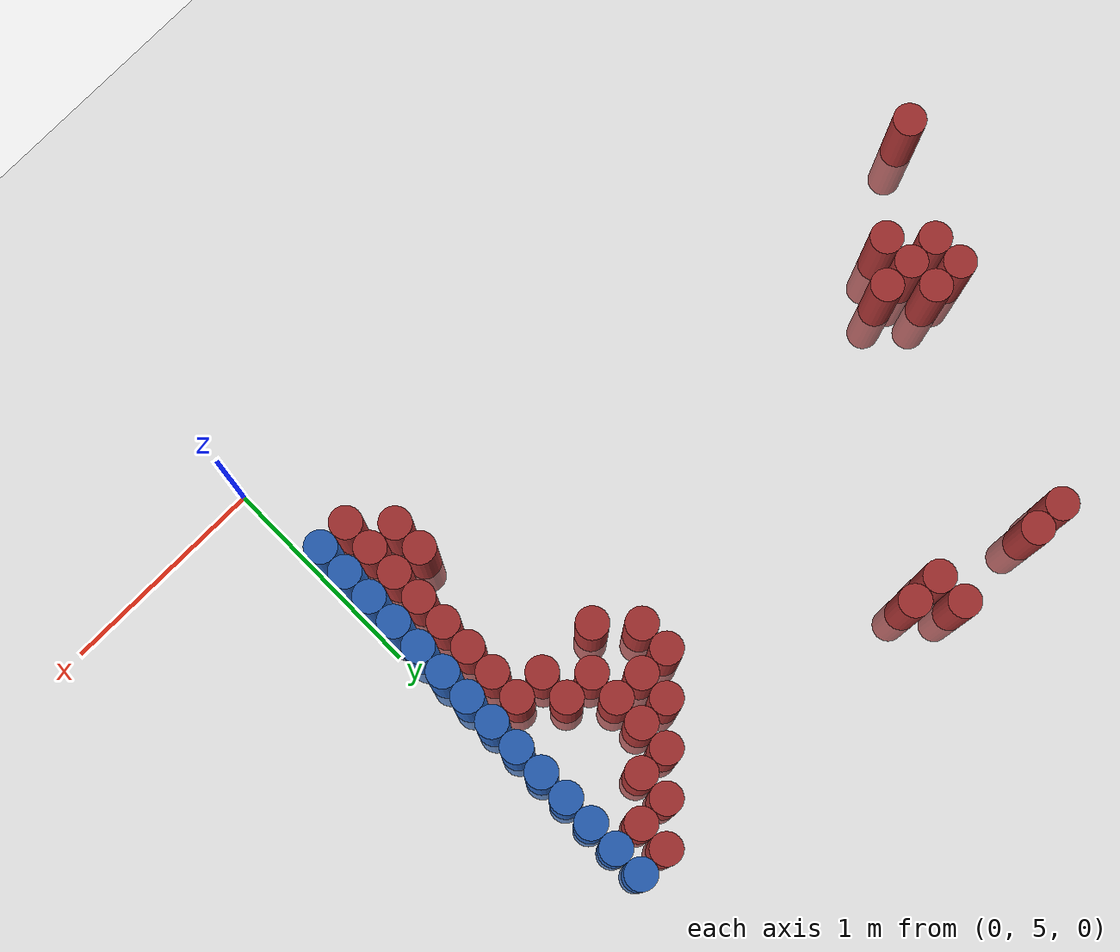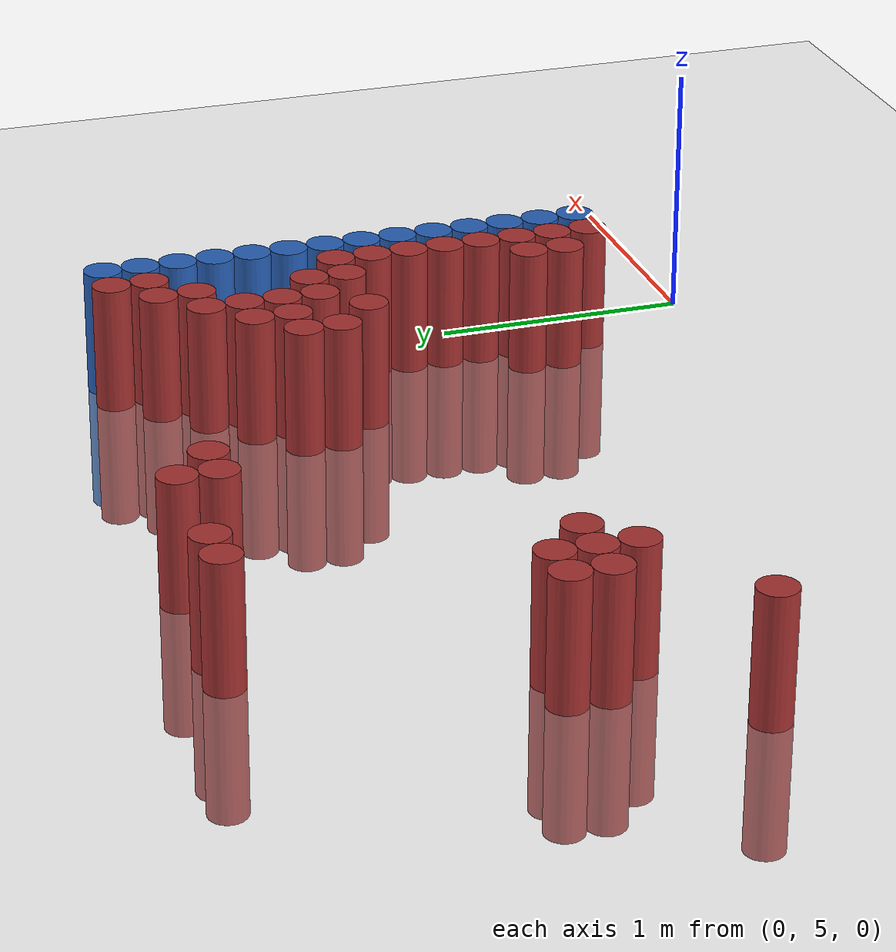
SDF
<sdf version="1.6">
 <world name="default">
  <model name="ground_plane">
   <static>1</static>
   <link name="link">
    <collision name="collision">
     <geometry><plane><normal>0 0 1</normal><size>100 100</size></plane></geometry>
     <surface><friction><ode><mu>100</mu><mu2>50</mu2></ode></friction></surface>
    </collision>
    <visual name="visual">
     <cast_shadows>0</cast_shadows>
     <geometry><plane><normal>0 0 1</normal><size>100 100</size></plane></geometry>
     <material>
      <script><uri>file://media/materials/scripts/gazebo.material</uri><name>Gazebo/Grey</name></script>
     </material>
    </visual>
   </link>
  </model>
  <model name="unit_cylinder_154">
   <static>1</static>
   <pose>-3.225000 5.925000 0.000000 0.000000 0.000000 0.000000</pose>
   <link name="link">
    <inertial>
     <mass>1</mass>
     <inertia><ixx>0.145833</ixx><ixy>0</ixy><ixz>0</ixz><iyy>0.145833</iyy><iyz>0</iyz><izz>0.125</izz></inertia>
    </inertial>
    <collision name="collision">
     <geometry><cylinder><radius>0.075000</radius><length>1</length></cylinder></geometry>
    </collision>
    <visual name="visual">
     <geometry><cylinder><radius>0.075000</radius><length>1</length></cylinder></geometry>
     <material>
      <ambient>0.648000 0.192000 0.192000 1</ambient>
      <diffuse>0.648000 0.192000 0.192000 1</diffuse>
     </material>
     <material>
      <script><name>Gazebo/Grey</name><uri>file://media/materials/scripts/gazebo.material</uri></script>
     </material>
    </visual>
   </link>
  </model>
  <model name="unit_cylinder_159">
   <static>1</static>
   <pose>-2.925000 6.375000 0.000000 0.000000 0.000000 0.000000</pose>
   <link name="link">
    <inertial>
     <mass>1</mass>
     <inertia><ixx>0.145833</ixx><ixy>0</ixy><ixz>0</ixz><iyy>0.145833</iyy><iyz>0</iyz><izz>0.125</izz></inertia>
    </inertial>
    <collision name="collision">
     <geometry><cylinder><radius>0.075000</radius><length>1</length></cylinder></geometry>
    </collision>
    <visual name="visual">
     <geometry><cylinder><radius>0.075000</radius><length>1</length></cylinder></geometry>
     <material>
      <ambient>0.648000 0.192000 0.192000 1</ambient>
      <diffuse>0.648000 0.192000 0.192000 1</diffuse>
     </material>
     <material>
      <script><name>Gazebo/Grey</name><uri>file://media/materials/scripts/gazebo.material</uri></script>
     </material>
    </visual>
   </link>
  </model>
  <model name="unit_cylinder_160">
   <static>1</static>
   <pose>-2.925000 6.525000 0.000000 0.000000 0.000000 0.000000</pose>
   <link name="link">
    <inertial>
     <mass>1</mass>
     <inertia><ixx>0.145833</ixx><ixy>0</ixy><ixz>0</ixz><iyy>0.145833</iyy><iyz>0</iyz><izz>0.125</izz></inertia>
    </inertial>
    <collision name="collision">
     <geometry><cylinder><radius>0.075000</radius><length>1</length></cylinder></geometry>
    </collision>
    <visual name="visual">
     <geometry><cylinder><radius>0.075000</radius><length>1</length></cylinder></geometry>
     <material>
      <ambient>0.648000 0.192000 0.192000 1</ambient>
      <diffuse>0.648000 0.192000 0.192000 1</diffuse>
     </material>
     <material>
      <script><name>Gazebo/Grey</name><uri>file://media/materials/scripts/gazebo.material</uri></script>
     </material>
    </visual>
   </link>
  </model>
  <model name="unit_cylinder_163">
   <static>1</static>
   <pose>-2.775000 6.225000 0.000000 0.000000 0.000000 0.000000</pose>
   <link name="link">
    <inertial>
     <mass>1</mass>
     <inertia><ixx>0.145833</ixx><ixy>0</ixy><ixz>0</ixz><iyy>0.145833</iyy><iyz>0</iyz><izz>0.125</izz></inertia>
    </inertial>
    <collision name="collision">
     <geometry><cylinder><radius>0.075000</radius><length>1</length></cylinder></geometry>
    </collision>
    <visual name="visual">
     <geometry><cylinder><radius>0.075000</radius><length>1</length></cylinder></geometry>
     <material>
      <ambient>0.648000 0.192000 0.192000 1</ambient>
      <diffuse>0.648000 0.192000 0.192000 1</diffuse>
     </material>
     <material>
      <script><name>Gazebo/Grey</name><uri>file://media/materials/scripts/gazebo.material</uri></script>
     </material>
    </visual>
   </link>
  </model>
  <model name="unit_cylinder_164">
   <static>1</static>
   <pose>-2.775000 6.375000 0.000000 0.000000 0.000000 0.000000</pose>
   <link name="link">
    <inertial>
     <mass>1</mass>
     <inertia><ixx>0.145833</ixx><ixy>0</ixy><ixz>0</ixz><iyy>0.145833</iyy><iyz>0</iyz><izz>0.125</izz></inertia>
    </inertial>
    <collision name="collision">
     <geometry><cylinder><radius>0.075000</radius><length>1</length></cylinder></geometry>
    </collision>
    <visual name="visual">
     <geometry><cylinder><radius>0.075000</radius><length>1</length></cylinder></geometry>
     <material>
      <ambient>0.648000 0.192000 0.192000 1</ambient>
      <diffuse>0.648000 0.192000 0.192000 1</diffuse>
     </material>
     <material>
      <script><name>Gazebo/Grey</name><uri>file://media/materials/scripts/gazebo.material</uri></script>
     </material>
    </visual>
   </link>
  </model>
  <model name="unit_cylinder_165">
   <static>1</static>
   <pose>-2.775000 6.525000 0.000000 0.000000 0.000000 0.000000</pose>
   <link name="link">
    <inertial>
     <mass>1</mass>
     <inertia><ixx>0.145833</ixx><ixy>0</ixy><ixz>0</ixz><iyy>0.145833</iyy><iyz>0</iyz><izz>0.125</izz></inertia>
    </inertial>
    <collision name="collision">
     <geometry><cylinder><radius>0.075000</radius><length>1</length></cylinder></geometry>
    </collision>
    <visual name="visual">
     <geometry><cylinder><radius>0.075000</radius><length>1</length></cylinder></geometry>
     <material>
      <ambient>0.648000 0.192000 0.192000 1</ambient>
      <diffuse>0.648000 0.192000 0.192000 1</diffuse>
     </material>
     <material>
      <script><name>Gazebo/Grey</name><uri>file://media/materials/scripts/gazebo.material</uri></script>
     </material>
    </visual>
   </link>
  </model>
  <model name="unit_cylinder_168">
   <static>1</static>
   <pose>-2.625000 6.375000 0.000000 0.000000 0.000000 0.000000</pose>
   <link name="link">
    <inertial>
     <mass>1</mass>
     <inertia><ixx>0.145833</ixx><ixy>0</ixy><ixz>0</ixz><iyy>0.145833</iyy><iyz>0</iyz><izz>0.125</izz></inertia>
    </inertial>
    <collision name="collision">
     <geometry><cylinder><radius>0.075000</radius><length>1</length></cylinder></geometry>
    </collision>
    <visual name="visual">
     <geometry><cylinder><radius>0.075000</radius><length>1</length></cylinder></geometry>
     <material>
      <ambient>0.648000 0.192000 0.192000 1</ambient>
      <diffuse>0.648000 0.192000 0.192000 1</diffuse>
     </material>
     <material>
      <script><name>Gazebo/Grey</name><uri>file://media/materials/scripts/gazebo.material</uri></script>
     </material>
    </visual>
   </link>
  </model>
  <model name="unit_cylinder_170">
   <static>1</static>
   <pose>-2.475000 7.575000 0.000000 0.000000 0.000000 0.000000</pose>
   <link name="link">
    <inertial>
     <mass>1</mass>
     <inertia><ixx>0.145833</ixx><ixy>0</ixy><ixz>0</ixz><iyy>0.145833</iyy><iyz>0</iyz><izz>0.125</izz></inertia>
    </inertial>
    <collision name="collision">
     <geometry><cylinder><radius>0.075000</radius><length>1</length></cylinder></geometry>
    </collision>
    <visual name="visual">
     <geometry><cylinder><radius>0.075000</radius><length>1</length></cylinder></geometry>
     <material>
      <ambient>0.648000 0.192000 0.192000 1</ambient>
      <diffuse>0.648000 0.192000 0.192000 1</diffuse>
     </material>
     <material>
      <script><name>Gazebo/Grey</name><uri>file://media/materials/scripts/gazebo.material</uri></script>
     </material>
    </visual>
   </link>
  </model>
  <model name="unit_cylinder_172">
   <static>1</static>
   <pose>-2.325000 7.575000 0.000000 0.000000 0.000000 0.000000</pose>
   <link name="link">
    <inertial>
     <mass>1</mass>
     <inertia><ixx>0.145833</ixx><ixy>0</ixy><ixz>0</ixz><iyy>0.145833</iyy><iyz>0</iyz><izz>0.125</izz></inertia>
    </inertial>
    <collision name="collision">
     <geometry><cylinder><radius>0.075000</radius><length>1</length></cylinder></geometry>
    </collision>
    <visual name="visual">
     <geometry><cylinder><radius>0.075000</radius><length>1</length></cylinder></geometry>
     <material>
      <ambient>0.648000 0.192000 0.192000 1</ambient>
      <diffuse>0.648000 0.192000 0.192000 1</diffuse>
     </material>
     <material>
      <script><name>Gazebo/Grey</name><uri>file://media/materials/scripts/gazebo.material</uri></script>
     </material>
    </visual>
   </link>
  </model>
  <model name="unit_cylinder_177">
   <static>1</static>
   <pose>-1.875000 7.425000 0.000000 0.000000 0.000000 0.000000</pose>
   <link name="link">
    <inertial>
     <mass>1</mass>
     <inertia><ixx>0.145833</ixx><ixy>0</ixy><ixz>0</ixz><iyy>0.145833</iyy><iyz>0</iyz><izz>0.125</izz></inertia>
    </inertial>
    <collision name="collision">
     <geometry><cylinder><radius>0.075000</radius><length>1</length></cylinder></geometry>
    </collision>
    <visual name="visual">
     <geometry><cylinder><radius>0.075000</radius><length>1</length></cylinder></geometry>
     <material>
      <ambient>0.648000 0.192000 0.192000 1</ambient>
      <diffuse>0.648000 0.192000 0.192000 1</diffuse>
     </material>
     <material>
      <script><name>Gazebo/Grey</name><uri>file://media/materials/scripts/gazebo.material</uri></script>
     </material>
    </visual>
   </link>
  </model>
  <model name="unit_cylinder_178">
   <static>1</static>
   <pose>-1.875000 7.575000 0.000000 0.000000 0.000000 0.000000</pose>
   <link name="link">
    <inertial>
     <mass>1</mass>
     <inertia><ixx>0.145833</ixx><ixy>0</ixy><ixz>0</ixz><iyy>0.145833</iyy><iyz>0</iyz><izz>0.125</izz></inertia>
    </inertial>
    <collision name="collision">
     <geometry><cylinder><radius>0.075000</radius><length>1</length></cylinder></geometry>
    </collision>
    <visual name="visual">
     <geometry><cylinder><radius>0.075000</radius><length>1</length></cylinder></geometry>
     <material>
      <ambient>0.648000 0.192000 0.192000 1</ambient>
      <diffuse>0.648000 0.192000 0.192000 1</diffuse>
     </material>
     <material>
      <script><name>Gazebo/Grey</name><uri>file://media/materials/scripts/gazebo.material</uri></script>
     </material>
    </visual>
   </link>
  </model>
  <model name="unit_cylinder_179">
   <static>1</static>
   <pose>-1.725000 7.425000 0.000000 0.000000 0.000000 0.000000</pose>
   <link name="link">
    <inertial>
     <mass>1</mass>
     <inertia><ixx>0.145833</ixx><ixy>0</ixy><ixz>0</ixz><iyy>0.145833</iyy><iyz>0</iyz><izz>0.125</izz></inertia>
    </inertial>
    <collision name="collision">
     <geometry><cylinder><radius>0.075000</radius><length>1</length></cylinder></geometry>
    </collision>
    <visual name="visual">
     <geometry><cylinder><radius>0.075000</radius><length>1</length></cylinder></geometry>
     <material>
      <ambient>0.648000 0.192000 0.192000 1</ambient>
      <diffuse>0.648000 0.192000 0.192000 1</diffuse>
     </material>
     <material>
      <script><name>Gazebo/Grey</name><uri>file://media/materials/scripts/gazebo.material</uri></script>
     </material>
    </visual>
   </link>
  </model>
  <model name="unit_cylinder_192">
   <static>1</static>
   <pose>-0.825000 6.675000 0.000000 0.000000 0.000000 0.000000</pose>
   <link name="link">
    <inertial>
     <mass>1</mass>
     <inertia><ixx>0.145833</ixx><ixy>0</ixy><ixz>0</ixz><iyy>0.145833</iyy><iyz>0</iyz><izz>0.125</izz></inertia>
    </inertial>
    <collision name="collision">
     <geometry><cylinder><radius>0.075000</radius><length>1</length></cylinder></geometry>
    </collision>
    <visual name="visual">
     <geometry><cylinder><radius>0.075000</radius><length>1</length></cylinder></geometry>
     <material>
      <ambient>0.648000 0.192000 0.192000 1</ambient>
      <diffuse>0.648000 0.192000 0.192000 1</diffuse>
     </material>
     <material>
      <script><name>Gazebo/Grey</name><uri>file://media/materials/scripts/gazebo.material</uri></script>
     </material>
    </visual>
   </link>
  </model>
  <model name="unit_cylinder_193">
   <static>1</static>
   <pose>-0.825000 6.825000 0.000000 0.000000 0.000000 0.000000</pose>
   <link name="link">
    <inertial>
     <mass>1</mass>
     <inertia><ixx>0.145833</ixx><ixy>0</ixy><ixz>0</ixz><iyy>0.145833</iyy><iyz>0</iyz><izz>0.125</izz></inertia>
    </inertial>
    <collision name="collision">
     <geometry><cylinder><radius>0.075000</radius><length>1</length></cylinder></geometry>
    </collision>
    <visual name="visual">
     <geometry><cylinder><radius>0.075000</radius><length>1</length></cylinder></geometry>
     <material>
      <ambient>0.648000 0.192000 0.192000 1</ambient>
      <diffuse>0.648000 0.192000 0.192000 1</diffuse>
     </material>
     <material>
      <script><name>Gazebo/Grey</name><uri>file://media/materials/scripts/gazebo.material</uri></script>
     </material>
    </visual>
   </link>
  </model>
  <model name="unit_cylinder_194">
   <static>1</static>
   <pose>-0.675000 6.525000 0.000000 0.000000 0.000000 0.000000</pose>
   <link name="link">
    <inertial>
     <mass>1</mass>
     <inertia><ixx>0.145833</ixx><ixy>0</ixy><ixz>0</ixz><iyy>0.145833</iyy><iyz>0</iyz><izz>0.125</izz></inertia>
    </inertial>
    <collision name="collision">
     <geometry><cylinder><radius>0.075000</radius><length>1</length></cylinder></geometry>
    </collision>
    <visual name="visual">
     <geometry><cylinder><radius>0.075000</radius><length>1</length></cylinder></geometry>
     <material>
      <ambient>0.648000 0.192000 0.192000 1</ambient>
      <diffuse>0.648000 0.192000 0.192000 1</diffuse>
     </material>
     <material>
      <script><name>Gazebo/Grey</name><uri>file://media/materials/scripts/gazebo.material</uri></script>
     </material>
    </visual>
   </link>
  </model>
  <model name="unit_cylinder_195">
   <static>1</static>
   <pose>-0.675000 6.825000 0.000000 0.000000 0.000000 0.000000</pose>
   <link name="link">
    <inertial>
     <mass>1</mass>
     <inertia><ixx>0.145833</ixx><ixy>0</ixy><ixz>0</ixz><iyy>0.145833</iyy><iyz>0</iyz><izz>0.125</izz></inertia>
    </inertial>
    <collision name="collision">
     <geometry><cylinder><radius>0.075000</radius><length>1</length></cylinder></geometry>
    </collision>
    <visual name="visual">
     <geometry><cylinder><radius>0.075000</radius><length>1</length></cylinder></geometry>
     <material>
      <ambient>0.648000 0.192000 0.192000 1</ambient>
      <diffuse>0.648000 0.192000 0.192000 1</diffuse>
     </material>
     <material>
      <script><name>Gazebo/Grey</name><uri>file://media/materials/scripts/gazebo.material</uri></script>
     </material>
    </visual>
   </link>
  </model>
  <model name="unit_cylinder_196">
   <static>1</static>
   <pose>-0.675000 6.975000 0.000000 0.000000 0.000000 0.000000</pose>
   <link name="link">
    <inertial>
     <mass>1</mass>
     <inertia><ixx>0.145833</ixx><ixy>0</ixy><ixz>0</ixz><iyy>0.145833</iyy><iyz>0</iyz><izz>0.125</izz></inertia>
    </inertial>
    <collision name="collision">
     <geometry><cylinder><radius>0.075000</radius><length>1</length></cylinder></geometry>
    </collision>
    <visual name="visual">
     <geometry><cylinder><radius>0.075000</radius><length>1</length></cylinder></geometry>
     <material>
      <ambient>0.648000 0.192000 0.192000 1</ambient>
      <diffuse>0.648000 0.192000 0.192000 1</diffuse>
     </material>
     <material>
      <script><name>Gazebo/Grey</name><uri>file://media/materials/scripts/gazebo.material</uri></script>
     </material>
    </visual>
   </link>
  </model>
  <model name="unit_cylinder_197">
   <static>1</static>
   <pose>-0.525000 6.675000 0.000000 0.000000 0.000000 0.000000</pose>
   <link name="link">
    <inertial>
     <mass>1</mass>
     <inertia><ixx>0.145833</ixx><ixy>0</ixy><ixz>0</ixz><iyy>0.145833</iyy><iyz>0</iyz><izz>0.125</izz></inertia>
    </inertial>
    <collision name="collision">
     <geometry><cylinder><radius>0.075000</radius><length>1</length></cylinder></geometry>
    </collision>
    <visual name="visual">
     <geometry><cylinder><radius>0.075000</radius><length>1</length></cylinder></geometry>
     <material>
      <ambient>0.648000 0.192000 0.192000 1</ambient>
      <diffuse>0.648000 0.192000 0.192000 1</diffuse>
     </material>
     <material>
      <script><name>Gazebo/Grey</name><uri>file://media/materials/scripts/gazebo.material</uri></script>
     </material>
    </visual>
   </link>
  </model>
  <model name="unit_cylinder_198">
   <static>1</static>
   <pose>-0.525000 6.825000 0.000000 0.000000 0.000000 0.000000</pose>
   <link name="link">
    <inertial>
     <mass>1</mass>
     <inertia><ixx>0.145833</ixx><ixy>0</ixy><ixz>0</ixz><iyy>0.145833</iyy><iyz>0</iyz><izz>0.125</izz></inertia>
    </inertial>
    <collision name="collision">
     <geometry><cylinder><radius>0.075000</radius><length>1</length></cylinder></geometry>
    </collision>
    <visual name="visual">
     <geometry><cylinder><radius>0.075000</radius><length>1</length></cylinder></geometry>
     <material>
      <ambient>0.648000 0.192000 0.192000 1</ambient>
      <diffuse>0.648000 0.192000 0.192000 1</diffuse>
     </material>
     <material>
      <script><name>Gazebo/Grey</name><uri>file://media/materials/scripts/gazebo.material</uri></script>
     </material>
    </visual>
   </link>
  </model>
  <model name="unit_cylinder_199">
   <static>1</static>
   <pose>-0.525000 6.975000 0.000000 0.000000 0.000000 0.000000</pose>
   <link name="link">
    <inertial>
     <mass>1</mass>
     <inertia><ixx>0.145833</ixx><ixy>0</ixy><ixz>0</ixz><iyy>0.145833</iyy><iyz>0</iyz><izz>0.125</izz></inertia>
    </inertial>
    <collision name="collision">
     <geometry><cylinder><radius>0.075000</radius><length>1</length></cylinder></geometry>
    </collision>
    <visual name="visual">
     <geometry><cylinder><radius>0.075000</radius><length>1</length></cylinder></geometry>
     <material>
      <ambient>0.648000 0.192000 0.192000 1</ambient>
      <diffuse>0.648000 0.192000 0.192000 1</diffuse>
     </material>
     <material>
      <script><name>Gazebo/Grey</name><uri>file://media/materials/scripts/gazebo.material</uri></script>
     </material>
    </visual>
   </link>
  </model>
  <model name="unit_cylinder_200">
   <static>1</static>
   <pose>-0.525000 7.125000 0.000000 0.000000 0.000000 0.000000</pose>
   <link name="link">
    <inertial>
     <mass>1</mass>
     <inertia><ixx>0.145833</ixx><ixy>0</ixy><ixz>0</ixz><iyy>0.145833</iyy><iyz>0</iyz><izz>0.125</izz></inertia>
    </inertial>
    <collision name="collision">
     <geometry><cylinder><radius>0.075000</radius><length>1</length></cylinder></geometry>
    </collision>
    <visual name="visual">
     <geometry><cylinder><radius>0.075000</radius><length>1</length></cylinder></geometry>
     <material>
      <ambient>0.648000 0.192000 0.192000 1</ambient>
      <diffuse>0.648000 0.192000 0.192000 1</diffuse>
     </material>
     <material>
      <script><name>Gazebo/Grey</name><uri>file://media/materials/scripts/gazebo.material</uri></script>
     </material>
    </visual>
   </link>
  </model>
  <model name="unit_cylinder_201">
   <static>1</static>
   <pose>-0.375000 5.625000 0.000000 0.000000 0.000000 0.000000</pose>
   <link name="link">
    <inertial>
     <mass>1</mass>
     <inertia><ixx>0.145833</ixx><ixy>0</ixy><ixz>0</ixz><iyy>0.145833</iyy><iyz>0</iyz><izz>0.125</izz></inertia>
    </inertial>
    <collision name="collision">
     <geometry><cylinder><radius>0.075000</radius><length>1</length></cylinder></geometry>
    </collision>
    <visual name="visual">
     <geometry><cylinder><radius>0.075000</radius><length>1</length></cylinder></geometry>
     <material>
      <ambient>0.648000 0.192000 0.192000 1</ambient>
      <diffuse>0.648000 0.192000 0.192000 1</diffuse>
     </material>
     <material>
      <script><name>Gazebo/Grey</name><uri>file://media/materials/scripts/gazebo.material</uri></script>
     </material>
    </visual>
   </link>
  </model>
  <model name="unit_cylinder_202">
   <static>1</static>
   <pose>-0.375000 5.775000 0.000000 0.000000 0.000000 0.000000</pose>
   <link name="link">
    <inertial>
     <mass>1</mass>
     <inertia><ixx>0.145833</ixx><ixy>0</ixy><ixz>0</ixz><iyy>0.145833</iyy><iyz>0</iyz><izz>0.125</izz></inertia>
    </inertial>
    <collision name="collision">
     <geometry><cylinder><radius>0.075000</radius><length>1</length></cylinder></geometry>
    </collision>
    <visual name="visual">
     <geometry><cylinder><radius>0.075000</radius><length>1</length></cylinder></geometry>
     <material>
      <ambient>0.648000 0.192000 0.192000 1</ambient>
      <diffuse>0.648000 0.192000 0.192000 1</diffuse>
     </material>
     <material>
      <script><name>Gazebo/Grey</name><uri>file://media/materials/scripts/gazebo.material</uri></script>
     </material>
    </visual>
   </link>
  </model>
  <model name="unit_cylinder_203">
   <static>1</static>
   <pose>-0.375000 6.525000 0.000000 0.000000 0.000000 0.000000</pose>
   <link name="link">
    <inertial>
     <mass>1</mass>
     <inertia><ixx>0.145833</ixx><ixy>0</ixy><ixz>0</ixz><iyy>0.145833</iyy><iyz>0</iyz><izz>0.125</izz></inertia>
    </inertial>
    <collision name="collision">
     <geometry><cylinder><radius>0.075000</radius><length>1</length></cylinder></geometry>
    </collision>
    <visual name="visual">
     <geometry><cylinder><radius>0.075000</radius><length>1</length></cylinder></geometry>
     <material>
      <ambient>0.648000 0.192000 0.192000 1</ambient>
      <diffuse>0.648000 0.192000 0.192000 1</diffuse>
     </material>
     <material>
      <script><name>Gazebo/Grey</name><uri>file://media/materials/scripts/gazebo.material</uri></script>
     </material>
    </visual>
   </link>
  </model>
  <model name="unit_cylinder_204">
   <static>1</static>
   <pose>-0.375000 6.675000 0.000000 0.000000 0.000000 0.000000</pose>
   <link name="link">
    <inertial>
     <mass>1</mass>
     <inertia><ixx>0.145833</ixx><ixy>0</ixy><ixz>0</ixz><iyy>0.145833</iyy><iyz>0</iyz><izz>0.125</izz></inertia>
    </inertial>
    <collision name="collision">
     <geometry><cylinder><radius>0.075000</radius><length>1</length></cylinder></geometry>
    </collision>
    <visual name="visual">
     <geometry><cylinder><radius>0.075000</radius><length>1</length></cylinder></geometry>
     <material>
      <ambient>0.648000 0.192000 0.192000 1</ambient>
      <diffuse>0.648000 0.192000 0.192000 1</diffuse>
     </material>
     <material>
      <script><name>Gazebo/Grey</name><uri>file://media/materials/scripts/gazebo.material</uri></script>
     </material>
    </visual>
   </link>
  </model>
  <model name="unit_cylinder_205">
   <static>1</static>
   <pose>-0.375000 7.125000 0.000000 0.000000 0.000000 0.000000</pose>
   <link name="link">
    <inertial>
     <mass>1</mass>
     <inertia><ixx>0.145833</ixx><ixy>0</ixy><ixz>0</ixz><iyy>0.145833</iyy><iyz>0</iyz><izz>0.125</izz></inertia>
    </inertial>
    <collision name="collision">
     <geometry><cylinder><radius>0.075000</radius><length>1</length></cylinder></geometry>
    </collision>
    <visual name="visual">
     <geometry><cylinder><radius>0.075000</radius><length>1</length></cylinder></geometry>
     <material>
      <ambient>0.648000 0.192000 0.192000 1</ambient>
      <diffuse>0.648000 0.192000 0.192000 1</diffuse>
     </material>
     <material>
      <script><name>Gazebo/Grey</name><uri>file://media/materials/scripts/gazebo.material</uri></script>
     </material>
    </visual>
   </link>
  </model>
  <model name="unit_cylinder_206">
   <static>1</static>
   <pose>-0.375000 7.275000 0.000000 0.000000 0.000000 0.000000</pose>
   <link name="link">
    <inertial>
     <mass>1</mass>
     <inertia><ixx>0.145833</ixx><ixy>0</ixy><ixz>0</ixz><iyy>0.145833</iyy><iyz>0</iyz><izz>0.125</izz></inertia>
    </inertial>
    <collision name="collision">
     <geometry><cylinder><radius>0.075000</radius><length>1</length></cylinder></geometry>
    </collision>
    <visual name="visual">
     <geometry><cylinder><radius>0.075000</radius><length>1</length></cylinder></geometry>
     <material>
      <ambient>0.648000 0.192000 0.192000 1</ambient>
      <diffuse>0.648000 0.192000 0.192000 1</diffuse>
     </material>
     <material>
      <script><name>Gazebo/Grey</name><uri>file://media/materials/scripts/gazebo.material</uri></script>
     </material>
    </visual>
   </link>
  </model>
  <model name="unit_cylinder_210">
   <static>1</static>
   <pose>-0.225000 5.475000 0.000000 0.000000 0.000000 0.000000</pose>
   <link name="link">
    <inertial>
     <mass>1</mass>
     <inertia><ixx>0.145833</ixx><ixy>0</ixy><ixz>0</ixz><iyy>0.145833</iyy><iyz>0</iyz><izz>0.125</izz></inertia>
    </inertial>
    <collision name="collision">
     <geometry><cylinder><radius>0.075000</radius><length>1</length></cylinder></geometry>
    </collision>
    <visual name="visual">
     <geometry><cylinder><radius>0.075000</radius><length>1</length></cylinder></geometry>
     <material>
      <ambient>0.648000 0.192000 0.192000 1</ambient>
      <diffuse>0.648000 0.192000 0.192000 1</diffuse>
     </material>
     <material>
      <script><name>Gazebo/Grey</name><uri>file://media/materials/scripts/gazebo.material</uri></script>
     </material>
    </visual>
   </link>
  </model>
  <model name="unit_cylinder_211">
   <static>1</static>
   <pose>-0.225000 5.625000 0.000000 0.000000 0.000000 0.000000</pose>
   <link name="link">
    <inertial>
     <mass>1</mass>
     <inertia><ixx>0.145833</ixx><ixy>0</ixy><ixz>0</ixz><iyy>0.145833</iyy><iyz>0</iyz><izz>0.125</izz></inertia>
    </inertial>
    <collision name="collision">
     <geometry><cylinder><radius>0.075000</radius><length>1</length></cylinder></geometry>
    </collision>
    <visual name="visual">
     <geometry><cylinder><radius>0.075000</radius><length>1</length></cylinder></geometry>
     <material>
      <ambient>0.648000 0.192000 0.192000 1</ambient>
      <diffuse>0.648000 0.192000 0.192000 1</diffuse>
     </material>
     <material>
      <script><name>Gazebo/Grey</name><uri>file://media/materials/scripts/gazebo.material</uri></script>
     </material>
    </visual>
   </link>
  </model>
  <model name="unit_cylinder_212">
   <static>1</static>
   <pose>-0.225000 5.775000 0.000000 0.000000 0.000000 0.000000</pose>
   <link name="link">
    <inertial>
     <mass>1</mass>
     <inertia><ixx>0.145833</ixx><ixy>0</ixy><ixz>0</ixz><iyy>0.145833</iyy><iyz>0</iyz><izz>0.125</izz></inertia>
    </inertial>
    <collision name="collision">
     <geometry><cylinder><radius>0.075000</radius><length>1</length></cylinder></geometry>
    </collision>
    <visual name="visual">
     <geometry><cylinder><radius>0.075000</radius><length>1</length></cylinder></geometry>
     <material>
      <ambient>0.648000 0.192000 0.192000 1</ambient>
      <diffuse>0.648000 0.192000 0.192000 1</diffuse>
     </material>
     <material>
      <script><name>Gazebo/Grey</name><uri>file://media/materials/scripts/gazebo.material</uri></script>
     </material>
    </visual>
   </link>
  </model>
  <model name="unit_cylinder_213">
   <static>1</static>
   <pose>-0.225000 5.925000 0.000000 0.000000 0.000000 0.000000</pose>
   <link name="link">
    <inertial>
     <mass>1</mass>
     <inertia><ixx>0.145833</ixx><ixy>0</ixy><ixz>0</ixz><iyy>0.145833</iyy><iyz>0</iyz><izz>0.125</izz></inertia>
    </inertial>
    <collision name="collision">
     <geometry><cylinder><radius>0.075000</radius><length>1</length></cylinder></geometry>
    </collision>
    <visual name="visual">
     <geometry><cylinder><radius>0.075000</radius><length>1</length></cylinder></geometry>
     <material>
      <ambient>0.648000 0.192000 0.192000 1</ambient>
      <diffuse>0.648000 0.192000 0.192000 1</diffuse>
     </material>
     <material>
      <script><name>Gazebo/Grey</name><uri>file://media/materials/scripts/gazebo.material</uri></script>
     </material>
    </visual>
   </link>
  </model>
  <model name="unit_cylinder_214">
   <static>1</static>
   <pose>-0.225000 6.075000 0.000000 0.000000 0.000000 0.000000</pose>
   <link name="link">
    <inertial>
     <mass>1</mass>
     <inertia><ixx>0.145833</ixx><ixy>0</ixy><ixz>0</ixz><iyy>0.145833</iyy><iyz>0</iyz><izz>0.125</izz></inertia>
    </inertial>
    <collision name="collision">
     <geometry><cylinder><radius>0.075000</radius><length>1</length></cylinder></geometry>
    </collision>
    <visual name="visual">
     <geometry><cylinder><radius>0.075000</radius><length>1</length></cylinder></geometry>
     <material>
      <ambient>0.648000 0.192000 0.192000 1</ambient>
      <diffuse>0.648000 0.192000 0.192000 1</diffuse>
     </material>
     <material>
      <script><name>Gazebo/Grey</name><uri>file://media/materials/scripts/gazebo.material</uri></script>
     </material>
    </visual>
   </link>
  </model>
  <model name="unit_cylinder_215">
   <static>1</static>
   <pose>-0.225000 6.225000 0.000000 0.000000 0.000000 0.000000</pose>
   <link name="link">
    <inertial>
     <mass>1</mass>
     <inertia><ixx>0.145833</ixx><ixy>0</ixy><ixz>0</ixz><iyy>0.145833</iyy><iyz>0</iyz><izz>0.125</izz></inertia>
    </inertial>
    <collision name="collision">
     <geometry><cylinder><radius>0.075000</radius><length>1</length></cylinder></geometry>
    </collision>
    <visual name="visual">
     <geometry><cylinder><radius>0.075000</radius><length>1</length></cylinder></geometry>
     <material>
      <ambient>0.648000 0.192000 0.192000 1</ambient>
      <diffuse>0.648000 0.192000 0.192000 1</diffuse>
     </material>
     <material>
      <script><name>Gazebo/Grey</name><uri>file://media/materials/scripts/gazebo.material</uri></script>
     </material>
    </visual>
   </link>
  </model>
  <model name="unit_cylinder_216">
   <static>1</static>
   <pose>-0.225000 6.375000 0.000000 0.000000 0.000000 0.000000</pose>
   <link name="link">
    <inertial>
     <mass>1</mass>
     <inertia><ixx>0.145833</ixx><ixy>0</ixy><ixz>0</ixz><iyy>0.145833</iyy><iyz>0</iyz><izz>0.125</izz></inertia>
    </inertial>
    <collision name="collision">
     <geometry><cylinder><radius>0.075000</radius><length>1</length></cylinder></geometry>
    </collision>
    <visual name="visual">
     <geometry><cylinder><radius>0.075000</radius><length>1</length></cylinder></geometry>
     <material>
      <ambient>0.648000 0.192000 0.192000 1</ambient>
      <diffuse>0.648000 0.192000 0.192000 1</diffuse>
     </material>
     <material>
      <script><name>Gazebo/Grey</name><uri>file://media/materials/scripts/gazebo.material</uri></script>
     </material>
    </visual>
   </link>
  </model>
  <model name="unit_cylinder_217">
   <static>1</static>
   <pose>-0.225000 6.525000 0.000000 0.000000 0.000000 0.000000</pose>
   <link name="link">
    <inertial>
     <mass>1</mass>
     <inertia><ixx>0.145833</ixx><ixy>0</ixy><ixz>0</ixz><iyy>0.145833</iyy><iyz>0</iyz><izz>0.125</izz></inertia>
    </inertial>
    <collision name="collision">
     <geometry><cylinder><radius>0.075000</radius><length>1</length></cylinder></geometry>
    </collision>
    <visual name="visual">
     <geometry><cylinder><radius>0.075000</radius><length>1</length></cylinder></geometry>
     <material>
      <ambient>0.648000 0.192000 0.192000 1</ambient>
      <diffuse>0.648000 0.192000 0.192000 1</diffuse>
     </material>
     <material>
      <script><name>Gazebo/Grey</name><uri>file://media/materials/scripts/gazebo.material</uri></script>
     </material>
    </visual>
   </link>
  </model>
  <model name="unit_cylinder_218">
   <static>1</static>
   <pose>-0.225000 7.275000 0.000000 0.000000 0.000000 0.000000</pose>
   <link name="link">
    <inertial>
     <mass>1</mass>
     <inertia><ixx>0.145833</ixx><ixy>0</ixy><ixz>0</ixz><iyy>0.145833</iyy><iyz>0</iyz><izz>0.125</izz></inertia>
    </inertial>
    <collision name="collision">
     <geometry><cylinder><radius>0.075000</radius><length>1</length></cylinder></geometry>
    </collision>
    <visual name="visual">
     <geometry><cylinder><radius>0.075000</radius><length>1</length></cylinder></geometry>
     <material>
      <ambient>0.648000 0.192000 0.192000 1</ambient>
      <diffuse>0.648000 0.192000 0.192000 1</diffuse>
     </material>
     <material>
      <script><name>Gazebo/Grey</name><uri>file://media/materials/scripts/gazebo.material</uri></script>
     </material>
    </visual>
   </link>
  </model>
  <model name="unit_cylinder_219">
   <static>1</static>
   <pose>-0.225000 7.425000 0.000000 0.000000 0.000000 0.000000</pose>
   <link name="link">
    <inertial>
     <mass>1</mass>
     <inertia><ixx>0.145833</ixx><ixy>0</ixy><ixz>0</ixz><iyy>0.145833</iyy><iyz>0</iyz><izz>0.125</izz></inertia>
    </inertial>
    <collision name="collision">
     <geometry><cylinder><radius>0.075000</radius><length>1</length></cylinder></geometry>
    </collision>
    <visual name="visual">
     <geometry><cylinder><radius>0.075000</radius><length>1</length></cylinder></geometry>
     <material>
      <ambient>0.648000 0.192000 0.192000 1</ambient>
      <diffuse>0.648000 0.192000 0.192000 1</diffuse>
     </material>
     <material>
      <script><name>Gazebo/Grey</name><uri>file://media/materials/scripts/gazebo.material</uri></script>
     </material>
    </visual>
   </link>
  </model>
  <model name="unit_cylinder_231">
   <static>1</static>
   <pose>-0.075000 5.475000 0.000000 0.000000 0.000000 0.000000</pose>
   <link name="link">
    <inertial>
     <mass>1</mass>
     <inertia><ixx>0.145833</ixx><ixy>0</ixy><ixz>0</ixz><iyy>0.145833</iyy><iyz>0</iyz><izz>0.125</izz></inertia>
    </inertial>
    <collision name="collision">
     <geometry><cylinder><radius>0.075000</radius><length>1</length></cylinder></geometry>
    </collision>
    <visual name="visual">
     <geometry><cylinder><radius>0.075000</radius><length>1</length></cylinder></geometry>
     <material>
      <ambient>0.152000 0.379000 0.720000 1</ambient>
      <diffuse>0.152000 0.379000 0.720000 1</diffuse>
     </material>
     <material>
      <script><name>Gazebo/Grey</name><uri>file://media/materials/scripts/gazebo.material</uri></script>
     </material>
    </visual>
   </link>
  </model>
  <model name="unit_cylinder_232">
   <static>1</static>
   <pose>-0.075000 5.625000 0.000000 0.000000 0.000000 0.000000</pose>
   <link name="link">
    <inertial>
     <mass>1</mass>
     <inertia><ixx>0.145833</ixx><ixy>0</ixy><ixz>0</ixz><iyy>0.145833</iyy><iyz>0</iyz><izz>0.125</izz></inertia>
    </inertial>
    <collision name="collision">
     <geometry><cylinder><radius>0.075000</radius><length>1</length></cylinder></geometry>
    </collision>
    <visual name="visual">
     <geometry><cylinder><radius>0.075000</radius><length>1</length></cylinder></geometry>
     <material>
      <ambient>0.152000 0.379000 0.720000 1</ambient>
      <diffuse>0.152000 0.379000 0.720000 1</diffuse>
     </material>
     <material>
      <script><name>Gazebo/Grey</name><uri>file://media/materials/scripts/gazebo.material</uri></script>
     </material>
    </visual>
   </link>
  </model>
  <model name="unit_cylinder_233">
   <static>1</static>
   <pose>-0.075000 5.775000 0.000000 0.000000 0.000000 0.000000</pose>
   <link name="link">
    <inertial>
     <mass>1</mass>
     <inertia><ixx>0.145833</ixx><ixy>0</ixy><ixz>0</ixz><iyy>0.145833</iyy><iyz>0</iyz><izz>0.125</izz></inertia>
    </inertial>
    <collision name="collision">
     <geometry><cylinder><radius>0.075000</radius><length>1</length></cylinder></geometry>
    </collision>
    <visual name="visual">
     <geometry><cylinder><radius>0.075000</radius><length>1</length></cylinder></geometry>
     <material>
      <ambient>0.152000 0.379000 0.720000 1</ambient>
      <diffuse>0.152000 0.379000 0.720000 1</diffuse>
     </material>
     <material>
      <script><name>Gazebo/Grey</name><uri>file://media/materials/scripts/gazebo.material</uri></script>
     </material>
    </visual>
   </link>
  </model>
  <model name="unit_cylinder_234">
   <static>1</static>
   <pose>-0.075000 5.925000 0.000000 0.000000 0.000000 0.000000</pose>
   <link name="link">
    <inertial>
     <mass>1</mass>
     <inertia><ixx>0.145833</ixx><ixy>0</ixy><ixz>0</ixz><iyy>0.145833</iyy><iyz>0</iyz><izz>0.125</izz></inertia>
    </inertial>
    <collision name="collision">
     <geometry><cylinder><radius>0.075000</radius><length>1</length></cylinder></geometry>
    </collision>
    <visual name="visual">
     <geometry><cylinder><radius>0.075000</radius><length>1</length></cylinder></geometry>
     <material>
      <ambient>0.152000 0.379000 0.720000 1</ambient>
      <diffuse>0.152000 0.379000 0.720000 1</diffuse>
     </material>
     <material>
      <script><name>Gazebo/Grey</name><uri>file://media/materials/scripts/gazebo.material</uri></script>
     </material>
    </visual>
   </link>
  </model>
  <model name="unit_cylinder_235">
   <static>1</static>
   <pose>-0.075000 6.075000 0.000000 0.000000 0.000000 0.000000</pose>
   <link name="link">
    <inertial>
     <mass>1</mass>
     <inertia><ixx>0.145833</ixx><ixy>0</ixy><ixz>0</ixz><iyy>0.145833</iyy><iyz>0</iyz><izz>0.125</izz></inertia>
    </inertial>
    <collision name="collision">
     <geometry><cylinder><radius>0.075000</radius><length>1</length></cylinder></geometry>
    </collision>
    <visual name="visual">
     <geometry><cylinder><radius>0.075000</radius><length>1</length></cylinder></geometry>
     <material>
      <ambient>0.152000 0.379000 0.720000 1</ambient>
      <diffuse>0.152000 0.379000 0.720000 1</diffuse>
     </material>
     <material>
      <script><name>Gazebo/Grey</name><uri>file://media/materials/scripts/gazebo.material</uri></script>
     </material>
    </visual>
   </link>
  </model>
  <model name="unit_cylinder_236">
   <static>1</static>
   <pose>-0.075000 6.225000 0.000000 0.000000 0.000000 0.000000</pose>
   <link name="link">
    <inertial>
     <mass>1</mass>
     <inertia><ixx>0.145833</ixx><ixy>0</ixy><ixz>0</ixz><iyy>0.145833</iyy><iyz>0</iyz><izz>0.125</izz></inertia>
    </inertial>
    <collision name="collision">
     <geometry><cylinder><radius>0.075000</radius><length>1</length></cylinder></geometry>
    </collision>
    <visual name="visual">
     <geometry><cylinder><radius>0.075000</radius><length>1</length></cylinder></geometry>
     <material>
      <ambient>0.152000 0.379000 0.720000 1</ambient>
      <diffuse>0.152000 0.379000 0.720000 1</diffuse>
     </material>
     <material>
      <script><name>Gazebo/Grey</name><uri>file://media/materials/scripts/gazebo.material</uri></script>
     </material>
    </visual>
   </link>
  </model>
  <model name="unit_cylinder_237">
   <static>1</static>
   <pose>-0.075000 6.375000 0.000000 0.000000 0.000000 0.000000</pose>
   <link name="link">
    <inertial>
     <mass>1</mass>
     <inertia><ixx>0.145833</ixx><ixy>0</ixy><ixz>0</ixz><iyy>0.145833</iyy><iyz>0</iyz><izz>0.125</izz></inertia>
    </inertial>
    <collision name="collision">
     <geometry><cylinder><radius>0.075000</radius><length>1</length></cylinder></geometry>
    </collision>
    <visual name="visual">
     <geometry><cylinder><radius>0.075000</radius><length>1</length></cylinder></geometry>
     <material>
      <ambient>0.152000 0.379000 0.720000 1</ambient>
      <diffuse>0.152000 0.379000 0.720000 1</diffuse>
     </material>
     <material>
      <script><name>Gazebo/Grey</name><uri>file://media/materials/scripts/gazebo.material</uri></script>
     </material>
    </visual>
   </link>
  </model>
  <model name="unit_cylinder_238">
   <static>1</static>
   <pose>-0.075000 6.525000 0.000000 0.000000 0.000000 0.000000</pose>
   <link name="link">
    <inertial>
     <mass>1</mass>
     <inertia><ixx>0.145833</ixx><ixy>0</ixy><ixz>0</ixz><iyy>0.145833</iyy><iyz>0</iyz><izz>0.125</izz></inertia>
    </inertial>
    <collision name="collision">
     <geometry><cylinder><radius>0.075000</radius><length>1</length></cylinder></geometry>
    </collision>
    <visual name="visual">
     <geometry><cylinder><radius>0.075000</radius><length>1</length></cylinder></geometry>
     <material>
      <ambient>0.152000 0.379000 0.720000 1</ambient>
      <diffuse>0.152000 0.379000 0.720000 1</diffuse>
     </material>
     <material>
      <script><name>Gazebo/Grey</name><uri>file://media/materials/scripts/gazebo.material</uri></script>
     </material>
    </visual>
   </link>
  </model>
  <model name="unit_cylinder_239">
   <static>1</static>
   <pose>-0.075000 6.675000 0.000000 0.000000 0.000000 0.000000</pose>
   <link name="link">
    <inertial>
     <mass>1</mass>
     <inertia><ixx>0.145833</ixx><ixy>0</ixy><ixz>0</ixz><iyy>0.145833</iyy><iyz>0</iyz><izz>0.125</izz></inertia>
    </inertial>
    <collision name="collision">
     <geometry><cylinder><radius>0.075000</radius><length>1</length></cylinder></geometry>
    </collision>
    <visual name="visual">
     <geometry><cylinder><radius>0.075000</radius><length>1</length></cylinder></geometry>
     <material>
      <ambient>0.152000 0.379000 0.720000 1</ambient>
      <diffuse>0.152000 0.379000 0.720000 1</diffuse>
     </material>
     <material>
      <script><name>Gazebo/Grey</name><uri>file://media/materials/scripts/gazebo.material</uri></script>
     </material>
    </visual>
   </link>
  </model>
  <model name="unit_cylinder_240">
   <static>1</static>
   <pose>-0.075000 6.825000 0.000000 0.000000 0.000000 0.000000</pose>
   <link name="link">
    <inertial>
     <mass>1</mass>
     <inertia><ixx>0.145833</ixx><ixy>0</ixy><ixz>0</ixz><iyy>0.145833</iyy><iyz>0</iyz><izz>0.125</izz></inertia>
    </inertial>
    <collision name="collision">
     <geometry><cylinder><radius>0.075000</radius><length>1</length></cylinder></geometry>
    </collision>
    <visual name="visual">
     <geometry><cylinder><radius>0.075000</radius><length>1</length></cylinder></geometry>
     <material>
      <ambient>0.152000 0.379000 0.720000 1</ambient>
      <diffuse>0.152000 0.379000 0.720000 1</diffuse>
     </material>
     <material>
      <script><name>Gazebo/Grey</name><uri>file://media/materials/scripts/gazebo.material</uri></script>
     </material>
    </visual>
   </link>
  </model>
  <model name="unit_cylinder_241">
   <static>1</static>
   <pose>-0.075000 6.975000 0.000000 0.000000 0.000000 0.000000</pose>
   <link name="link">
    <inertial>
     <mass>1</mass>
     <inertia><ixx>0.145833</ixx><ixy>0</ixy><ixz>0</ixz><iyy>0.145833</iyy><iyz>0</iyz><izz>0.125</izz></inertia>
    </inertial>
    <collision name="collision">
     <geometry><cylinder><radius>0.075000</radius><length>1</length></cylinder></geometry>
    </collision>
    <visual name="visual">
     <geometry><cylinder><radius>0.075000</radius><length>1</length></cylinder></geometry>
     <material>
      <ambient>0.152000 0.379000 0.720000 1</ambient>
      <diffuse>0.152000 0.379000 0.720000 1</diffuse>
     </material>
     <material>
      <script><name>Gazebo/Grey</name><uri>file://media/materials/scripts/gazebo.material</uri></script>
     </material>
    </visual>
   </link>
  </model>
  <model name="unit_cylinder_242">
   <static>1</static>
   <pose>-0.075000 7.125000 0.000000 0.000000 0.000000 0.000000</pose>
   <link name="link">
    <inertial>
     <mass>1</mass>
     <inertia><ixx>0.145833</ixx><ixy>0</ixy><ixz>0</ixz><iyy>0.145833</iyy><iyz>0</iyz><izz>0.125</izz></inertia>
    </inertial>
    <collision name="collision">
     <geometry><cylinder><radius>0.075000</radius><length>1</length></cylinder></geometry>
    </collision>
    <visual name="visual">
     <geometry><cylinder><radius>0.075000</radius><length>1</length></cylinder></geometry>
     <material>
      <ambient>0.152000 0.379000 0.720000 1</ambient>
      <diffuse>0.152000 0.379000 0.720000 1</diffuse>
     </material>
     <material>
      <script><name>Gazebo/Grey</name><uri>file://media/materials/scripts/gazebo.material</uri></script>
     </material>
    </visual>
   </link>
  </model>
  <model name="unit_cylinder_243">
   <static>1</static>
   <pose>-0.075000 7.275000 0.000000 0.000000 0.000000 0.000000</pose>
   <link name="link">
    <inertial>
     <mass>1</mass>
     <inertia><ixx>0.145833</ixx><ixy>0</ixy><ixz>0</ixz><iyy>0.145833</iyy><iyz>0</iyz><izz>0.125</izz></inertia>
    </inertial>
    <collision name="collision">
     <geometry><cylinder><radius>0.075000</radius><length>1</length></cylinder></geometry>
    </collision>
    <visual name="visual">
     <geometry><cylinder><radius>0.075000</radius><length>1</length></cylinder></geometry>
     <material>
      <ambient>0.152000 0.379000 0.720000 1</ambient>
      <diffuse>0.152000 0.379000 0.720000 1</diffuse>
     </material>
     <material>
      <script><name>Gazebo/Grey</name><uri>file://media/materials/scripts/gazebo.material</uri></script>
     </material>
    </visual>
   </link>
  </model>
  <model name="unit_cylinder_244">
   <static>1</static>
   <pose>-0.075000 7.425000 0.000000 0.000000 0.000000 0.000000</pose>
   <link name="link">
    <inertial>
     <mass>1</mass>
     <inertia><ixx>0.145833</ixx><ixy>0</ixy><ixz>0</ixz><iyy>0.145833</iyy><iyz>0</iyz><izz>0.125</izz></inertia>
    </inertial>
    <collision name="collision">
     <geometry><cylinder><radius>0.075000</radius><length>1</length></cylinder></geometry>
    </collision>
    <visual name="visual">
     <geometry><cylinder><radius>0.075000</radius><length>1</length></cylinder></geometry>
     <material>
      <ambient>0.152000 0.379000 0.720000 1</ambient>
      <diffuse>0.152000 0.379000 0.720000 1</diffuse>
     </material>
     <material>
      <script><name>Gazebo/Grey</name><uri>file://media/materials/scripts/gazebo.material</uri></script>
     </material>
    </visual>
   </link>
  </model>
 </world>
</sdf>
